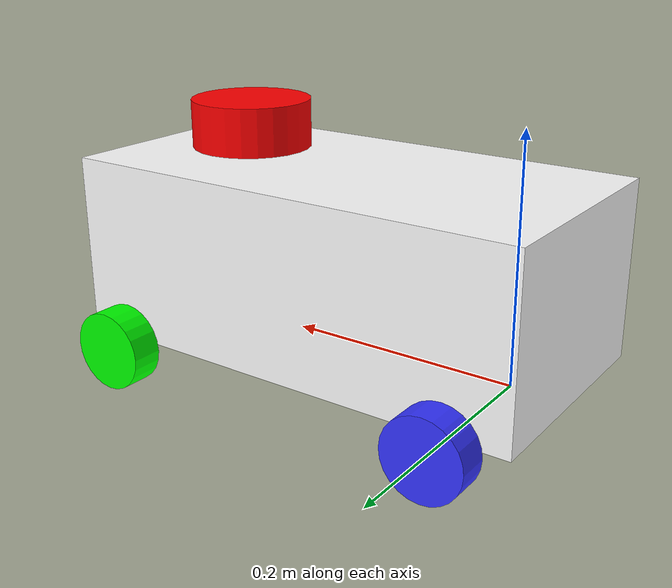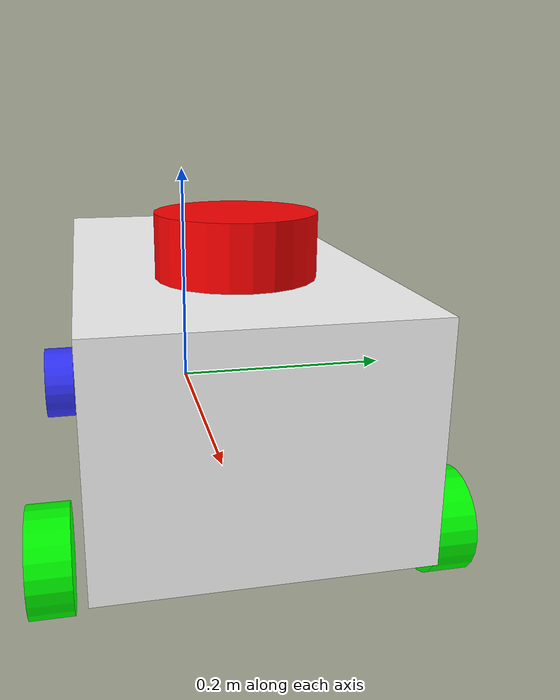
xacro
<?xml version="1.0"?>
<robot xmlns:xacro="http://www.ros.org/wiki/xacro"  name="robot">

    <xacro:arg name="use_ros2_control" default="true" />

    <xacro:include filename="robot_core.xacro" />

    <xacro:if value="$(arg use_ros2_control)">
        <xacro:include filename="ros2_control.xacro" />
    </xacro:if>

    <xacro:unless value="$(arg use_ros2_control)">
        <xacro:include filename="gazebo_control.xacro" />
    </xacro:unless>

    <xacro:include filename="lidar.xacro" />

</robot>

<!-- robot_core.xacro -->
<robot xmlns:xacro="http://www.ros.org/wiki/xacro" >

    <xacro:include filename="inertial_macros.xacro" />
    <material name="white">
        <color rgba = "1 1 1 1" />
    </material>
    <material name="orange">
        <color rgba = "1 0.3 0.1 1" />
    </material>
    <material name="blue">
        <color rgba = "0.2 0.2 1 1" />
    </material>
    <material name="black">
        <color rgba = "0 0 0 1" />
    </material>
    <material name="red">
        <color rgba = "1 0 0 1" />
    </material>
    <material name="green">
        <color rgba="0.0 1.0 0.0 1.0"/>
    </material>

    <link name="base_link" >

    </link>
    <!-- BASE_FOOTPRINT LINK necessary for slam_toolbox-->

    <joint name="base_footprint_joint" type="fixed">
        <origin xyz="0.0 0.0 0.0" rpy="0.0 0.0 0.0"/>
        <parent link="base_link"/>
        <child link="base_footprint"/>
    </joint>

    <link name="base_footprint">
    </link>

    <!-- CHASSIS LINK -->
    <joint name = "chassis_joint" type = "fixed">
        <parent link = "base_link" />
        <child link = "chassis" />
        <origin xyz = "-0.05 0 0.075" />
    </joint>

    <link name="chassis" >
        <visual>
            <origin xyz = "0.2 0 0" />
            <geometry>
                <box size="0.4 0.2 0.15" />
            </geometry>
            <material name = "white" />

        </visual>
        <collision>
            <origin xyz = "0.2 0 0.075" />
            <geometry>
                <box size="0.4 0.2 0.15" />
            </geometry>
        </collision>
        <xacro:inertial_box mass="1.85" x="0.4" y="0.2" z="0.15">
            <origin xyz = "0.2 0 0.075" rpy = "0 0 0"/>
        </xacro:inertial_box>
    </link>

    <gazebo reference="chassis">
        <material>Gazebo/White</material>
    </gazebo>

    <!-- front_left-->
    <link name="leftiii_wheel" >
        <visual>
            <origin xyz="0 0 0" rpy="-${pi/2} 0 0" />
            <geometry>
                <cylinder radius = "0.033" length = "0.026"/>
            </geometry>
            <material name = "green" />
        </visual>
        <collision>
            <geometry>
                <cylinder radius = "0.033" length = "0.026"/>
            </geometry>
        </collision>
        <xacro:inertial_cylinder mass = "0.1" radius = "0.033" length = "0.026" >
            <origin xyz = "0 0 0" rpy = "0 0 0"/>
        </xacro:inertial_cylinder>
    </link>

    <link name="art_w_left">
      <inertial>
        <origin rpy="0 0 0" xyz="0 0 0" />
        <mass value="1" />
        <inertia ixx="1.0" ixy="0.0" ixz="0.0" iyy="1.0" iyz="0.0" izz="1.0" />
      </inertial>
    </link>

    <!-- front_right-->
    <link name="rightiii_wheel" >
        <visual>
            <origin xyz="0 0 0" rpy="${pi/2} 0 0" />
            <geometry>
                <cylinder radius = "0.033" length = "0.026"/>
            </geometry>
            <material name = "green" />
        </visual>
        <collision>
            <geometry>
                <cylinder radius = "0.033" length = "0.026"/>
            </geometry>
        </collision>
        <xacro:inertial_cylinder mass = "0.1" radius = "0.033" length = "0.026" >
            <origin xyz = "0 0 0" rpy = "0 0 0"/>
        </xacro:inertial_cylinder>
    </link>

    <link name="art_w_right">
      <inertial>
        <origin rpy="0 0 0" xyz="0 0 0" />
        <mass value="1" />
        <inertia ixx="1.0" ixy="0.0" ixz="0.0" iyy="1.0" iyz="0.0" izz="1.0" />
      </inertial>
    </link>

    <!-- rear_left -->
    <link name="left_wheel" >
        <visual>
            <geometry>
                <cylinder radius = "0.033" length = "0.026"/>
            </geometry>
            <material name = "blue" />
        </visual>
        <collision>
            <geometry>
                <cylinder radius = "0.033" length = "0.026"/>
            </geometry>
        </collision>
        <xacro:inertial_cylinder mass = "0.1" radius = "0.033" length = "0.026" >
            <origin xyz = "0 0 0" rpy = "0 0 0"/>
        </xacro:inertial_cylinder>
    </link>

    <!-- rear_right -->
    <link name="right_wheel" >
        <visual>
            <geometry>
                <cylinder radius = "0.033" length = "0.026"/>
            </geometry>
            <material name = "blue" />
        </visual>
        <collision>
            <geometry>
                <cylinder radius = "0.033" length = "0.026"/>
            </geometry>
        </collision>
        <xacro:inertial_cylinder mass = "0.1" radius = "0.033" length = "0.026" >
            <origin xyz = "0 0 0" rpy = "0 0 0"/>
        </xacro:inertial_cylinder>
    </link>

<!-- //////////////////////////////// ACKERMANN STEERING JOINTS //////////////////////////////////// -->

    <joint name="art_wheel_left" type="continuous">
        <parent link="art_w_left"/>
        <child link="leftiii_wheel"/>
        <origin xyz="0.05 0 0" rpy="0 0 0" />
        <axis xyz= "0 1 0" />             <!-- rotates around y-axis -->
        <dynamics damping="0.05" friction="0.01"/>
    </joint>

    <joint name="art_wheel_right" type="continuous">
        <parent link="art_w_right"/>
        <child link="rightiii_wheel"/>
        <origin xyz="0.05 0 0" rpy="0 0 0" />   <!--${pi/2}-->
        <axis xyz= "0 1 0"/>
        <dynamics damping="0.05" friction="0.01"/>
    </joint>

    <joint name="base_art_w_left" type="revolute">
        <parent link="base_link"/>
        <child link="art_w_left"/>
        <origin xyz="0.25 0.121 0" rpy = "0 0 0" />
        <limit upper="0.5236" lower="-0.5236" velocity="20" effort="10"/>
        <axis xyz= "0 0 1" />             <!-- revolutes around z-axis -->
        <dynamics damping="0.05" friction="0.2"/>
    </joint>

    <joint name="base_art_w_right" type="revolute">
        <parent link="base_link"/>
        <child link="art_w_right"/>
        <origin xyz="0.25 -0.121 0" rpy = "0 0 0" />
        <limit upper="0.5236" lower="-0.5236" velocity="20" effort="10"/>
        <axis xyz= "0 0 1" />
        <dynamics damping="0.05" friction="0.2"/>
    </joint>

<!-- ////////////////////////////////////// JOINTS ///////////////////////////////////////////////// -->

    <joint name="left_wheel_3" type="continuous">
        <parent link="base_link"/>
        <child link="left_wheel"/>
        <origin xyz = "0 0.121 0.0" rpy = "-${pi/2} 0 0" />
        <axis xyz = "0 0 1" />
        <dynamics damping="0.05" friction="0.01"/>
    </joint>

    <joint name="right_wheel_4" type="continuous">
        <parent link="base_link"/>
        <child link="right_wheel"/>
        <origin xyz = "0 -0.121 0.0" rpy = "${pi/2} 0 0" />
        <axis xyz = "0 0 -1" />
        <dynamics damping="0.05" friction="0.01"/>
    </joint>

<!-- ////////////////////////////////////// GAZEBO ///////////////////////////////////////////////// -->

    <gazebo reference="leftiii_wheel">
        <material>Gazebo/Green</material>
        <mu1>1</mu1>
        <mu2>1</mu2>
        <kp>1000000</kp>
        <kd>0.1</kd>
        <selfCollide>true</selfCollide>
    </gazebo>

    <gazebo reference="rightiii_wheel">
        <material>Gazebo/Green</material>
        <mu1>1</mu1>
        <mu2>1</mu2>
        <kp>1000000</kp>
        <kd>0.1</kd>
        <selfCollide>true</selfCollide>
    </gazebo>

    <gazebo reference="left_wheel">
        <material>Gazebo/Blue</material>
        <mu1>1</mu1>
        <mu2>1</mu2>
        <kp>1000000</kp>
        <kd>0.1</kd>
        <selfCollide>true</selfCollide>
    </gazebo>

    <gazebo reference="right_wheel">
        <material>Gazebo/Blue</material>
        <mu1>1</mu1>
        <mu2>1</mu2>
        <kp>1000000</kp>
        <kd>0.1</kd>
        <selfCollide>true</selfCollide>
    </gazebo>

    <gazebo reference="art_w_left">
      <material>Gazebo/Green</material>
      <mu1>0.2</mu1>
      <mu2>0.2</mu2>
      <selfCollide>true</selfCollide>
    </gazebo>

    <gazebo reference="art_w_right">
      <material>Gazebo/Green</material>
      <mu1>0.2</mu1>
      <mu2>0.2</mu2>
      <selfCollide>true</selfCollide>
    </gazebo>

</robot>

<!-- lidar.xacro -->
<robot xmlns:xacro="http://www.ros.org/wiki/xacro" >

    <joint name="laser_joint" type="fixed">
        <parent link="chassis"/>
        <child link="laser_frame"/>
        <origin xyz="0.3 0 0.1" rpy="0 0 0"/>
    </joint>

    <link name="laser_frame">
        <visual>
            <geometry>
                <cylinder radius="0.05" length="0.04"/>
            </geometry>
            <material name="red"/>
        </visual>
        <collision>
            <geometry>
                <cylinder radius="0.05" length="0.04"/>
            </geometry>
        </collision>
        <xacro:inertial_cylinder mass="0.1" length="0.04" radius="0.05">
            <origin xyz="0 0 0" rpy="0 0 0"/>
        </xacro:inertial_cylinder>
    </link>

    <gazebo reference="laser_frame">
        <material>Gazebo/Red</material>

        <sensor name="laser" type="ray">
            <pose> 0 0 0 0 0 0 </pose>
            <visualize>true</visualize>
            <update_rate>10</update_rate>
            <ray>
                <scan>
                    <horizontal>
                        <samples>360</samples>
                        <min_angle>-3.14</min_angle>
                        <max_angle>3.14</max_angle>
                    </horizontal>
                </scan>
                <range>
                    <min>0.3</min>
                    <max>12</max>
                </range>
            </ray>
            <plugin name="laser_controller" filename="libgazebo_ros_ray_sensor.so">
                <ros>
                    <argument>~/out:=scan</argument>
                </ros>
                <output_type>sensor_msgs/LaserScan</output_type>
                <frame_name>laser_frame</frame_name>
            </plugin>
        </sensor>
    </gazebo>

</robot>
